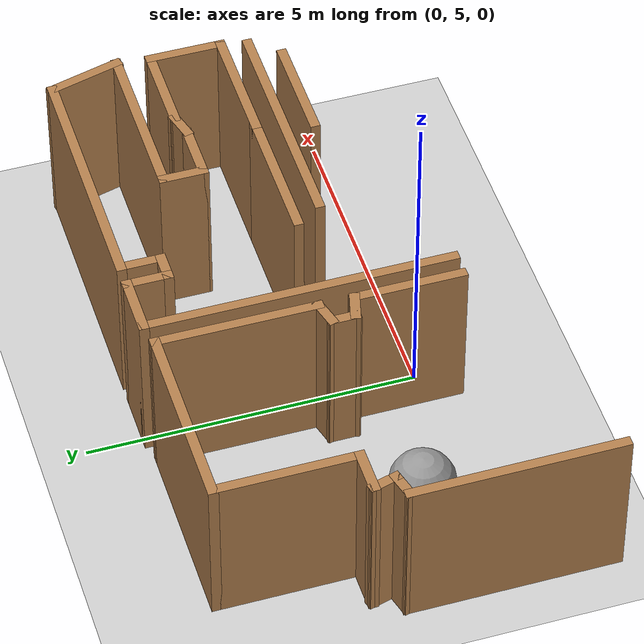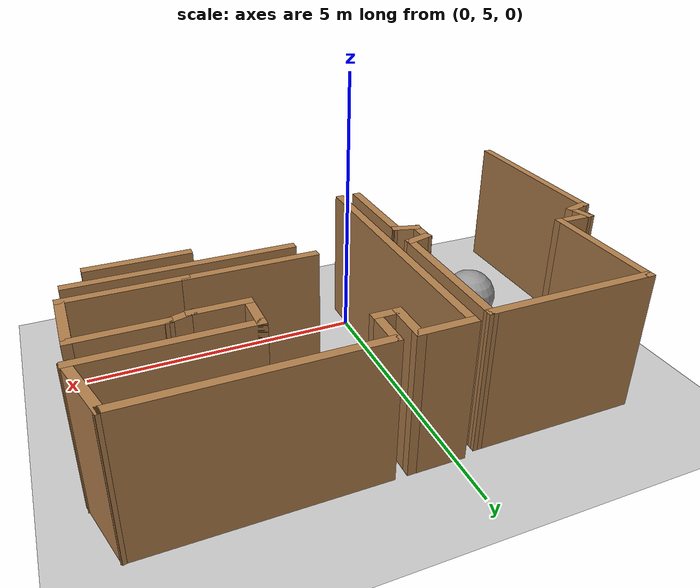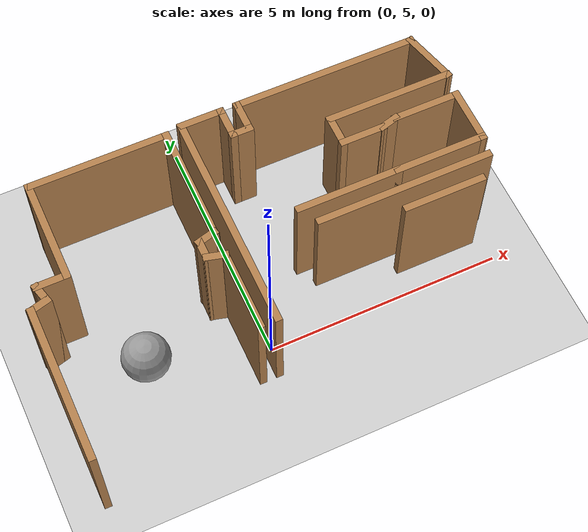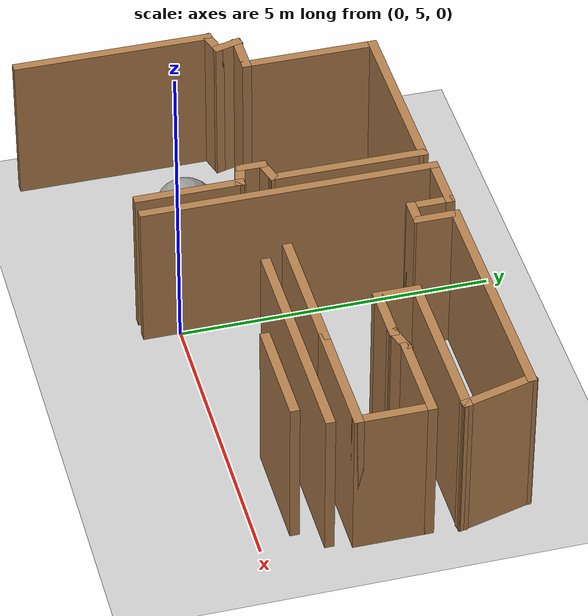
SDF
<sdf version="1.6">
 <world name="default">
  <model name="ground_plane">
   <static>1</static>
   <link name="link">
    <collision name="collision">
     <geometry><plane><normal>0 0 1</normal><size>100 100</size></plane></geometry>
     <surface><friction><ode><mu>100</mu><mu2>50</mu2></ode></friction></surface>
    </collision>
    <visual name="visual">
     <cast_shadows>0</cast_shadows>
     <geometry><plane><normal>0 0 1</normal><size>100 100</size></plane></geometry>
     <material>
      <script><uri>file://media/materials/scripts/gazebo.material</uri><name>Gazebo/Grey</name></script>
     </material>
    </visual>
   </link>
  </model>
  <model name="map_31">
   <link name="Wall_0">
    <pose>-2.44947 9.31 0 0 -0 3.14159</pose>
    <visual name="Wall_0_Visual">
     <pose>0 0 1.25 0 -0 0</pose>
     <geometry><box><size>3 0.15 2.5</size></box></geometry>
     <material>
      <script><uri>file://media/materials/scripts/gazebo.material</uri><name>Gazebo/Wood</name></script>
      <ambient>1 1 1 1</ambient>
      <shader type="pixel"/>
     </material>
     <meta><layer>0</layer></meta>
    </visual>
    <collision name="Wall_0_Collision">
     <pose>0 0 1.25 0 -0 0</pose>
     <geometry><box><size>3 0.15 2.5</size></box></geometry>
     <surface>
      <friction>
       <ode><mu>1</mu><mu2>1</mu2><fdir1>0 0 0</fdir1><slip1>0</slip1><slip2>0</slip2></ode>
       <torsional>
        <coefficient>1</coefficient>
        <patch_radius>0</patch_radius>
        <surface_radius>0</surface_radius>
        <use_patch_radius>1</use_patch_radius>
        <ode><slip>0</slip></ode>
       </torsional>
      </friction>
      <bounce><restitution_coefficient>0</restitution_coefficient><threshold>1e+06</threshold></bounce>
      <contact>
       <collide_without_contact>0</collide_without_contact>
       <collide_without_contact_bitmask>1</collide_without_contact_bitmask>
       <collide_bitmask>1</collide_bitmask>
       <ode>
        <soft_cfm>0</soft_cfm>
        <soft_erp>0.2</soft_erp>
        <kp>1e+13</kp>
        <kd>1</kd>
        <max_vel>0.01</max_vel>
        <min_depth>0</min_depth>
       </ode>
       <bullet>
        <split_impulse>1</split_impulse>
        <split_impulse_penetration_threshold>-0.01</split_impulse_penetration_threshold>
        <soft_cfm>0</soft_cfm>
        <soft_erp>0.2</soft_erp>
        <kp>1e+13</kp>
        <kd>1</kd>
       </bullet>
      </contact>
     </surface>
    </collision>
   </link>
   <link name="Wall_1">
    <pose>-3.87447 8.26 0 0 0 -1.5708</pose>
    <visual name="Wall_1_Visual">
     <pose>0 0 1.25 0 -0 0</pose>
     <geometry><box><size>2.25 0.15 2.5</size></box></geometry>
     <material>
      <script><uri>file://media/materials/scripts/gazebo.material</uri><name>Gazebo/Wood</name></script>
      <ambient>1 1 1 1</ambient>
      <shader type="pixel"/>
     </material>
     <meta><layer>0</layer></meta>
    </visual>
    <collision name="Wall_1_Collision">
     <pose>0 0 1.25 0 -0 0</pose>
     <geometry><box><size>2.25 0.15 2.5</size></box></geometry>
     <surface>
      <friction>
       <ode><mu>1</mu><mu2>1</mu2><fdir1>0 0 0</fdir1><slip1>0</slip1><slip2>0</slip2></ode>
       <torsional>
        <coefficient>1</coefficient>
        <patch_radius>0</patch_radius>
        <surface_radius>0</surface_radius>
        <use_patch_radius>1</use_patch_radius>
        <ode><slip>0</slip></ode>
       </torsional>
      </friction>
      <bounce><restitution_coefficient>0</restitution_coefficient><threshold>1e+06</threshold></bounce>
      <contact>
       <collide_without_contact>0</collide_without_contact>
       <collide_without_contact_bitmask>1</collide_without_contact_bitmask>
       <collide_bitmask>1</collide_bitmask>
       <ode>
        <soft_cfm>0</soft_cfm>
        <soft_erp>0.2</soft_erp>
        <kp>1e+13</kp>
        <kd>1</kd>
        <max_vel>0.01</max_vel>
        <min_depth>0</min_depth>
       </ode>
       <bullet>
        <split_impulse>1</split_impulse>
        <split_impulse_penetration_threshold>-0.01</split_impulse_penetration_threshold>
        <soft_cfm>0</soft_cfm>
        <soft_erp>0.2</soft_erp>
        <kp>1e+13</kp>
        <kd>1</kd>
       </bullet>
      </contact>
     </surface>
    </collision>
   </link>
   <link name="Wall_101">
    <pose>1.69359 6.71756 0 0 -0 0</pose>
    <visual name="Wall_101_Visual">
     <pose>0 0 1.25 0 -0 0</pose>
     <geometry><box><size>2.25 0.15 2.5</size></box></geometry>
     <material>
      <script><uri>file://media/materials/scripts/gazebo.material</uri><name>Gazebo/Wood</name></script>
      <ambient>1 1 1 1</ambient>
      <shader type="pixel"/>
     </material>
     <meta><layer>0</layer></meta>
    </visual>
    <collision name="Wall_101_Collision">
     <pose>0 0 1.25 0 -0 0</pose>
     <geometry><box><size>2.25 0.15 2.5</size></box></geometry>
     <surface>
      <friction>
       <ode><mu>1</mu><mu2>1</mu2><fdir1>0 0 0</fdir1><slip1>0</slip1><slip2>0</slip2></ode>
       <torsional>
        <coefficient>1</coefficient>
        <patch_radius>0</patch_radius>
        <surface_radius>0</surface_radius>
        <use_patch_radius>1</use_patch_radius>
        <ode><slip>0</slip></ode>
       </torsional>
      </friction>
      <bounce><restitution_coefficient>0</restitution_coefficient><threshold>1e+06</threshold></bounce>
      <contact>
       <collide_without_contact>0</collide_without_contact>
       <collide_without_contact_bitmask>1</collide_without_contact_bitmask>
       <collide_bitmask>1</collide_bitmask>
       <ode>
        <soft_cfm>0</soft_cfm>
        <soft_erp>0.2</soft_erp>
        <kp>1e+13</kp>
        <kd>1</kd>
        <max_vel>0.01</max_vel>
        <min_depth>0</min_depth>
       </ode>
       <bullet>
        <split_impulse>1</split_impulse>
        <split_impulse_penetration_threshold>-0.01</split_impulse_penetration_threshold>
        <soft_cfm>0</soft_cfm>
        <soft_erp>0.2</soft_erp>
        <kp>1e+13</kp>
        <kd>1</kd>
       </bullet>
      </contact>
     </surface>
    </collision>
   </link>
   <link name="Wall_102">
    <pose>3.66859 6.71756 0 0 -0 0</pose>
    <visual name="Wall_102_Visual">
     <pose>0 0 1.25 0 -0 0</pose>
     <geometry><box><size>2 0.15 2.5</size></box></geometry>
     <material>
      <script><uri>file://media/materials/scripts/gazebo.material</uri><name>Gazebo/Wood</name></script>
      <ambient>1 1 1 1</ambient>
      <shader type="pixel"/>
     </material>
     <meta><layer>0</layer></meta>
    </visual>
    <collision name="Wall_102_Collision">
     <pose>0 0 1.25 0 -0 0</pose>
     <geometry><box><size>2 0.15 2.5</size></box></geometry>
     <surface>
      <friction>
       <ode><mu>1</mu><mu2>1</mu2><fdir1>0 0 0</fdir1><slip1>0</slip1><slip2>0</slip2></ode>
       <torsional>
        <coefficient>1</coefficient>
        <patch_radius>0</patch_radius>
        <surface_radius>0</surface_radius>
        <use_patch_radius>1</use_patch_radius>
        <ode><slip>0</slip></ode>
       </torsional>
      </friction>
      <bounce><restitution_coefficient>0</restitution_coefficient><threshold>1e+06</threshold></bounce>
      <contact>
       <collide_without_contact>0</collide_without_contact>
       <collide_without_contact_bitmask>1</collide_without_contact_bitmask>
       <collide_bitmask>1</collide_bitmask>
       <ode>
        <soft_cfm>0</soft_cfm>
        <soft_erp>0.2</soft_erp>
        <kp>1e+13</kp>
        <kd>1</kd>
        <max_vel>0.01</max_vel>
        <min_depth>0</min_depth>
       </ode>
       <bullet>
        <split_impulse>1</split_impulse>
        <split_impulse_penetration_threshold>-0.01</split_impulse_penetration_threshold>
        <soft_cfm>0</soft_cfm>
        <soft_erp>0.2</soft_erp>
        <kp>1e+13</kp>
        <kd>1</kd>
       </bullet>
      </contact>
     </surface>
    </collision>
   </link>
   <link name="Wall_103">
    <pose>4.59359 7.26756 0 0 -0 1.5708</pose>
    <visual name="Wall_103_Visual">
     <pose>0 0 1.25 0 -0 0</pose>
     <geometry><box><size>1.25 0.15 2.5</size></box></geometry>
     <material>
      <script><uri>file://media/materials/scripts/gazebo.material</uri><name>Gazebo/Wood</name></script>
      <ambient>1 1 1 1</ambient>
      <shader type="pixel"/>
     </material>
     <meta><layer>0</layer></meta>
    </visual>
    <collision name="Wall_103_Collision">
     <pose>0 0 1.25 0 -0 0</pose>
     <geometry><box><size>1.25 0.15 2.5</size></box></geometry>
     <surface>
      <friction>
       <ode><mu>1</mu><mu2>1</mu2><fdir1>0 0 0</fdir1><slip1>0</slip1><slip2>0</slip2></ode>
       <torsional>
        <coefficient>1</coefficient>
        <patch_radius>0</patch_radius>
        <surface_radius>0</surface_radius>
        <use_patch_radius>1</use_patch_radius>
        <ode><slip>0</slip></ode>
       </torsional>
      </friction>
      <bounce><restitution_coefficient>0</restitution_coefficient><threshold>1e+06</threshold></bounce>
      <contact>
       <collide_without_contact>0</collide_without_contact>
       <collide_without_contact_bitmask>1</collide_without_contact_bitmask>
       <collide_bitmask>1</collide_bitmask>
       <ode>
        <soft_cfm>0</soft_cfm>
        <soft_erp>0.2</soft_erp>
        <kp>1e+13</kp>
        <kd>1</kd>
        <max_vel>0.01</max_vel>
        <min_depth>0</min_depth>
       </ode>
       <bullet>
        <split_impulse>1</split_impulse>
        <split_impulse_penetration_threshold>-0.01</split_impulse_penetration_threshold>
        <soft_cfm>0</soft_cfm>
        <soft_erp>0.2</soft_erp>
        <kp>1e+13</kp>
        <kd>1</kd>
       </bullet>
      </contact>
     </surface>
    </collision>
   </link>
   <link name="Wall_104">
    <pose>3.91859 7.81756 0 0 -0 3.14159</pose>
    <visual name="Wall_104_Visual">
     <pose>0 0 1.25 0 -0 0</pose>
     <geometry><box><size>1.5 0.15 2.5</size></box></geometry>
     <material>
      <script><uri>file://media/materials/scripts/gazebo.material</uri><name>Gazebo/Wood</name></script>
      <ambient>1 1 1 1</ambient>
      <shader type="pixel"/>
     </material>
     <meta><layer>0</layer></meta>
    </visual>
    <collision name="Wall_104_Collision">
     <pose>0 0 1.25 0 -0 0</pose>
     <geometry><box><size>1.5 0.15 2.5</size></box></geometry>
     <surface>
      <friction>
       <ode><mu>1</mu><mu2>1</mu2><fdir1>0 0 0</fdir1><slip1>0</slip1><slip2>0</slip2></ode>
       <torsional>
        <coefficient>1</coefficient>
        <patch_radius>0</patch_radius>
        <surface_radius>0</surface_radius>
        <use_patch_radius>1</use_patch_radius>
        <ode><slip>0</slip></ode>
       </torsional>
      </friction>
      <bounce><restitution_coefficient>0</restitution_coefficient><threshold>1e+06</threshold></bounce>
      <contact>
       <collide_without_contact>0</collide_without_contact>
       <collide_without_contact_bitmask>1</collide_without_contact_bitmask>
       <collide_bitmask>1</collide_bitmask>
       <ode>
        <soft_cfm>0</soft_cfm>
        <soft_erp>0.2</soft_erp>
        <kp>1e+13</kp>
        <kd>1</kd>
        <max_vel>0.01</max_vel>
        <min_depth>0</min_depth>
       </ode>
       <bullet>
        <split_impulse>1</split_impulse>
        <split_impulse_penetration_threshold>-0.01</split_impulse_penetration_threshold>
        <soft_cfm>0</soft_cfm>
        <soft_erp>0.2</soft_erp>
        <kp>1e+13</kp>
        <kd>1</kd>
       </bullet>
      </contact>
     </surface>
    </collision>
   </link>
   <link name="Wall_105">
    <pose>3.07455 7.77226 0 0 0 -2.87979</pose>
    <visual name="Wall_105_Visual">
     <pose>0 0 1.25 0 -0 0</pose>
     <geometry><box><size>0.5 0.15 2.5</size></box></geometry>
     <material>
      <script><uri>file://media/materials/scripts/gazebo.material</uri><name>Gazebo/Wood</name></script>
      <ambient>1 1 1 1</ambient>
      <shader type="pixel"/>
     </material>
     <meta><layer>0</layer></meta>
    </visual>
    <collision name="Wall_105_Collision">
     <pose>0 0 1.25 0 -0 0</pose>
     <geometry><box><size>0.5 0.15 2.5</size></box></geometry>
     <surface>
      <friction>
       <ode><mu>1</mu><mu2>1</mu2><fdir1>0 0 0</fdir1><slip1>0</slip1><slip2>0</slip2></ode>
       <torsional>
        <coefficient>1</coefficient>
        <patch_radius>0</patch_radius>
        <surface_radius>0</surface_radius>
        <use_patch_radius>1</use_patch_radius>
        <ode><slip>0</slip></ode>
       </torsional>
      </friction>
      <bounce><restitution_coefficient>0</restitution_coefficient><threshold>1e+06</threshold></bounce>
      <contact>
       <collide_without_contact>0</collide_without_contact>
       <collide_without_contact_bitmask>1</collide_without_contact_bitmask>
       <collide_bitmask>1</collide_bitmask>
       <ode>
        <soft_cfm>0</soft_cfm>
        <soft_erp>0.2</soft_erp>
        <kp>1e+13</kp>
        <kd>1</kd>
        <max_vel>0.01</max_vel>
        <min_depth>0</min_depth>
       </ode>
       <bullet>
        <split_impulse>1</split_impulse>
        <split_impulse_penetration_threshold>-0.01</split_impulse_penetration_threshold>
        <soft_cfm>0</soft_cfm>
        <soft_erp>0.2</soft_erp>
        <kp>1e+13</kp>
        <kd>1</kd>
       </bullet>
      </contact>
     </surface>
    </collision>
   </link>
   <link name="Wall_106">
    <pose>2.48051 7.72697 0 0 -0 3.14159</pose>
    <visual name="Wall_106_Visual">
     <pose>0 0 1.25 0 -0 0</pose>
     <geometry><box><size>1 0.15 2.5</size></box></geometry>
     <material>
      <script><uri>file://media/materials/scripts/gazebo.material</uri><name>Gazebo/Wood</name></script>
      <ambient>1 1 1 1</ambient>
      <shader type="pixel"/>
     </material>
     <meta><layer>0</layer></meta>
    </visual>
    <collision name="Wall_106_Collision">
     <pose>0 0 1.25 0 -0 0</pose>
     <geometry><box><size>1 0.15 2.5</size></box></geometry>
     <surface>
      <friction>
       <ode><mu>1</mu><mu2>1</mu2><fdir1>0 0 0</fdir1><slip1>0</slip1><slip2>0</slip2></ode>
       <torsional>
        <coefficient>1</coefficient>
        <patch_radius>0</patch_radius>
        <surface_radius>0</surface_radius>
        <use_patch_radius>1</use_patch_radius>
        <ode><slip>0</slip></ode>
       </torsional>
      </friction>
      <bounce><restitution_coefficient>0</restitution_coefficient><threshold>1e+06</threshold></bounce>
      <contact>
       <collide_without_contact>0</collide_without_contact>
       <collide_without_contact_bitmask>1</collide_without_contact_bitmask>
       <collide_bitmask>1</collide_bitmask>
       <ode>
        <soft_cfm>0</soft_cfm>
        <soft_erp>0.2</soft_erp>
        <kp>1e+13</kp>
        <kd>1</kd>
        <max_vel>0.01</max_vel>
        <min_depth>0</min_depth>
       </ode>
       <bullet>
        <split_impulse>1</split_impulse>
        <split_impulse_penetration_threshold>-0.01</split_impulse_penetration_threshold>
        <soft_cfm>0</soft_cfm>
        <soft_erp>0.2</soft_erp>
        <kp>1e+13</kp>
        <kd>1</kd>
       </bullet>
      </contact>
     </surface>
    </collision>
   </link>
   <link name="Wall_107">
    <pose>2.05551 8.02697 0 0 -0 1.5708</pose>
    <visual name="Wall_107_Visual">
     <pose>0 0 1.25 0 -0 0</pose>
     <geometry><box><size>0.75 0.15 2.5</size></box></geometry>
     <material>
      <script><uri>file://media/materials/scripts/gazebo.material</uri><name>Gazebo/Wood</name></script>
      <ambient>1 1 1 1</ambient>
      <shader type="pixel"/>
     </material>
     <meta><layer>0</layer></meta>
    </visual>
    <collision name="Wall_107_Collision">
     <pose>0 0 1.25 0 -0 0</pose>
     <geometry><box><size>0.75 0.15 2.5</size></box></geometry>
     <surface>
      <friction>
       <ode><mu>1</mu><mu2>1</mu2><fdir1>0 0 0</fdir1><slip1>0</slip1><slip2>0</slip2></ode>
       <torsional>
        <coefficient>1</coefficient>
        <patch_radius>0</patch_radius>
        <surface_radius>0</surface_radius>
        <use_patch_radius>1</use_patch_radius>
        <ode><slip>0</slip></ode>
       </torsional>
      </friction>
      <bounce><restitution_coefficient>0</restitution_coefficient><threshold>1e+06</threshold></bounce>
      <contact>
       <collide_without_contact>0</collide_without_contact>
       <collide_without_contact_bitmask>1</collide_without_contact_bitmask>
       <collide_bitmask>1</collide_bitmask>
       <ode>
        <soft_cfm>0</soft_cfm>
        <soft_erp>0.2</soft_erp>
        <kp>1e+13</kp>
        <kd>1</kd>
        <max_vel>0.01</max_vel>
        <min_depth>0</min_depth>
       </ode>
       <bullet>
        <split_impulse>1</split_impulse>
        <split_impulse_penetration_threshold>-0.01</split_impulse_penetration_threshold>
        <soft_cfm>0</soft_cfm>
        <soft_erp>0.2</soft_erp>
        <kp>1e+13</kp>
        <kd>1</kd>
       </bullet>
      </contact>
     </surface>
    </collision>
   </link>
   <link name="Wall_108">
    <pose>3.35551 8.32697 0 0 -0 0</pose>
    <visual name="Wall_108_Visual">
     <pose>0 0 1.25 0 -0 0</pose>
     <geometry><box><size>2.75 0.15 2.5</size></box></geometry>
     <material>
      <script><uri>file://media/materials/scripts/gazebo.material</uri><name>Gazebo/Wood</name></script>
      <ambient>1 1 1 1</ambient>
      <shader type="pixel"/>
     </material>
     <meta><layer>0</layer></meta>
    </visual>
    <collision name="Wall_108_Collision">
     <pose>0 0 1.25 0 -0 0</pose>
     <geometry><box><size>2.75 0.15 2.5</size></box></geometry>
     <surface>
      <friction>
       <ode><mu>1</mu><mu2>1</mu2><fdir1>0 0 0</fdir1><slip1>0</slip1><slip2>0</slip2></ode>
       <torsional>
        <coefficient>1</coefficient>
        <patch_radius>0</patch_radius>
        <surface_radius>0</surface_radius>
        <use_patch_radius>1</use_patch_radius>
        <ode><slip>0</slip></ode>
       </torsional>
      </friction>
      <bounce><restitution_coefficient>0</restitution_coefficient><threshold>1e+06</threshold></bounce>
      <contact>
       <collide_without_contact>0</collide_without_contact>
       <collide_without_contact_bitmask>1</collide_without_contact_bitmask>
       <collide_bitmask>1</collide_bitmask>
       <ode>
        <soft_cfm>0</soft_cfm>
        <soft_erp>0.2</soft_erp>
        <kp>1e+13</kp>
        <kd>1</kd>
        <max_vel>0.01</max_vel>
        <min_depth>0</min_depth>
       </ode>
       <bullet>
        <split_impulse>1</split_impulse>
        <split_impulse_penetration_threshold>-0.01</split_impulse_penetration_threshold>
        <soft_cfm>0</soft_cfm>
        <soft_erp>0.2</soft_erp>
        <kp>1e+13</kp>
        <kd>1</kd>
       </bullet>
      </contact>
     </surface>
    </collision>
   </link>
   <link name="Wall_109">
    <pose>4.51316 8.85823 0 0 -0 1.8326</pose>
    <visual name="Wall_109_Visual">
     <pose>0 0 1.25 0 -0 0</pose>
     <geometry><box><size>1.25 0.15 2.5</size></box></geometry>
     <material>
      <script><uri>file://media/materials/scripts/gazebo.material</uri><name>Gazebo/Wood</name></script>
      <ambient>1 1 1 1</ambient>
      <shader type="pixel"/>
     </material>
     <meta><layer>0</layer></meta>
    </visual>
    <collision name="Wall_109_Collision">
     <pose>0 0 1.25 0 -0 0</pose>
     <geometry><box><size>1.25 0.15 2.5</size></box></geometry>
     <surface>
      <friction>
       <ode><mu>1</mu><mu2>1</mu2><fdir1>0 0 0</fdir1><slip1>0</slip1><slip2>0</slip2></ode>
       <torsional>
        <coefficient>1</coefficient>
        <patch_radius>0</patch_radius>
        <surface_radius>0</surface_radius>
        <use_patch_radius>1</use_patch_radius>
        <ode><slip>0</slip></ode>
       </torsional>
      </friction>
      <bounce><restitution_coefficient>0</restitution_coefficient><threshold>1e+06</threshold></bounce>
      <contact>
       <collide_without_contact>0</collide_without_contact>
       <collide_without_contact_bitmask>1</collide_without_contact_bitmask>
       <collide_bitmask>1</collide_bitmask>
       <ode>
        <soft_cfm>0</soft_cfm>
        <soft_erp>0.2</soft_erp>
        <kp>1e+13</kp>
        <kd>1</kd>
        <max_vel>0.01</max_vel>
        <min_depth>0</min_depth>
       </ode>
       <bullet>
        <split_impulse>1</split_impulse>
        <split_impulse_penetration_threshold>-0.01</split_impulse_penetration_threshold>
        <soft_cfm>0</soft_cfm>
        <soft_erp>0.2</soft_erp>
        <kp>1e+13</kp>
        <kd>1</kd>
       </bullet>
      </contact>
     </surface>
    </collision>
   </link>
   <link name="Wall_110">
    <pose>2.44581 9.38949 0 0 -0 3.14159</pose>
    <visual name="Wall_110_Visual">
     <pose>0 0 1.25 0 -0 0</pose>
     <geometry><box><size>4 0.15 2.5</size></box></geometry>
     <material>
      <script><uri>file://media/materials/scripts/gazebo.material</uri><name>Gazebo/Wood</name></script>
      <ambient>1 1 1 1</ambient>
      <shader type="pixel"/>
     </material>
     <meta><layer>0</layer></meta>
    </visual>
    <collision name="Wall_110_Collision">
     <pose>0 0 1.25 0 -0 0</pose>
     <geometry><box><size>4 0.15 2.5</size></box></geometry>
     <surface>
      <friction>
       <ode><mu>1</mu><mu2>1</mu2><fdir1>0 0 0</fdir1><slip1>0</slip1><slip2>0</slip2></ode>
       <torsional>
        <coefficient>1</coefficient>
        <patch_radius>0</patch_radius>
        <surface_radius>0</surface_radius>
        <use_patch_radius>1</use_patch_radius>
        <ode><slip>0</slip></ode>
       </torsional>
      </friction>
      <bounce><restitution_coefficient>0</restitution_coefficient><threshold>1e+06</threshold></bounce>
      <contact>
       <collide_without_contact>0</collide_without_contact>
       <collide_without_contact_bitmask>1</collide_without_contact_bitmask>
       <collide_bitmask>1</collide_bitmask>
       <ode>
        <soft_cfm>0</soft_cfm>
        <soft_erp>0.2</soft_erp>
        <kp>1e+13</kp>
        <kd>1</kd>
        <max_vel>0.01</max_vel>
        <min_depth>0</min_depth>
       </ode>
       <bullet>
        <split_impulse>1</split_impulse>
        <split_impulse_penetration_threshold>-0.01</split_impulse_penetration_threshold>
        <soft_cfm>0</soft_cfm>
        <soft_erp>0.2</soft_erp>
        <kp>1e+13</kp>
        <kd>1</kd>
       </bullet>
      </contact>
     </surface>
    </collision>
   </link>
   <link name="Wall_111">
    <pose>0.520811 9.08949 0 0 0 -1.5708</pose>
    <visual name="Wall_111_Visual">
     <pose>0 0 1.25 0 -0 0</pose>
     <geometry><box><size>0.75 0.15 2.5</size></box></geometry>
     <material>
      <script><uri>file://media/materials/scripts/gazebo.material</uri><name>Gazebo/Wood</name></script>
      <ambient>1 1 1 1</ambient>
      <shader type="pixel"/>
     </material>
     <meta><layer>0</layer></meta>
    </visual>
    <collision name="Wall_111_Collision">
     <pose>0 0 1.25 0 -0 0</pose>
     <geometry><box><size>0.75 0.15 2.5</size></box></geometry>
     <surface>
      <friction>
       <ode><mu>1</mu><mu2>1</mu2><fdir1>0 0 0</fdir1><slip1>0</slip1><slip2>0</slip2></ode>
       <torsional>
        <coefficient>1</coefficient>
        <patch_radius>0</patch_radius>
        <surface_radius>0</surface_radius>
        <use_patch_radius>1</use_patch_radius>
        <ode><slip>0</slip></ode>
       </torsional>
      </friction>
      <bounce><restitution_coefficient>0</restitution_coefficient><threshold>1e+06</threshold></bounce>
      <contact>
       <collide_without_contact>0</collide_without_contact>
       <collide_without_contact_bitmask>1</collide_without_contact_bitmask>
       <collide_bitmask>1</collide_bitmask>
       <ode>
        <soft_cfm>0</soft_cfm>
        <soft_erp>0.2</soft_erp>
        <kp>1e+13</kp>
        <kd>1</kd>
        <max_vel>0.01</max_vel>
        <min_depth>0</min_depth>
       </ode>
       <bullet>
        <split_impulse>1</split_impulse>
        <split_impulse_penetration_threshold>-0.01</split_impulse_penetration_threshold>
        <soft_cfm>0</soft_cfm>
        <soft_erp>0.2</soft_erp>
        <kp>1e+13</kp>
        <kd>1</kd>
       </bullet>
      </contact>
     </surface>
    </collision>
   </link>
   <link name="Wall_112">
    <pose>0.345811 8.78949 0 0 -0 3.14159</pose>
    <visual name="Wall_112_Visual">
     <pose>0 0 1.25 0 -0 0</pose>
     <geometry><box><size>0.5 0.15 2.5</size></box></geometry>
     <material>
      <script><uri>file://media/materials/scripts/gazebo.material</uri><name>Gazebo/Wood</name></script>
      <ambient>1 1 1 1</ambient>
      <shader type="pixel"/>
     </material>
     <meta><layer>0</layer></meta>
    </visual>
    <collision name="Wall_112_Collision">
     <pose>0 0 1.25 0 -0 0</pose>
     <geometry><box><size>0.5 0.15 2.5</size></box></geometry>
     <surface>
      <friction>
       <ode><mu>1</mu><mu2>1</mu2><fdir1>0 0 0</fdir1><slip1>0</slip1><slip2>0</slip2></ode>
       <torsional>
        <coefficient>1</coefficient>
        <patch_radius>0</patch_radius>
        <surface_radius>0</surface_radius>
        <use_patch_radius>1</use_patch_radius>
        <ode><slip>0</slip></ode>
       </torsional>
      </friction>
      <bounce><restitution_coefficient>0</restitution_coefficient><threshold>1e+06</threshold></bounce>
      <contact>
       <collide_without_contact>0</collide_without_contact>
       <collide_without_contact_bitmask>1</collide_without_contact_bitmask>
       <collide_bitmask>1</collide_bitmask>
       <ode>
        <soft_cfm>0</soft_cfm>
        <soft_erp>0.2</soft_erp>
        <kp>1e+13</kp>
        <kd>1</kd>
        <max_vel>0.01</max_vel>
        <min_depth>0</min_depth>
       </ode>
       <bullet>
        <split_impulse>1</split_impulse>
        <split_impulse_penetration_threshold>-0.01</split_impulse_penetration_threshold>
        <soft_cfm>0</soft_cfm>
        <soft_erp>0.2</soft_erp>
        <kp>1e+13</kp>
        <kd>1</kd>
       </bullet>
      </contact>
     </surface>
    </collision>
   </link>
   <link name="Wall_113">
    <pose>0.170811 9.08949 0 0 -0 1.5708</pose>
    <visual name="Wall_113_Visual">
     <pose>0 0 1.25 0 -0 0</pose>
     <geometry><box><size>0.75 0.15 2.5</size></box></geometry>
     <material>
      <script><uri>file://media/materials/scripts/gazebo.material</uri><name>Gazebo/Wood</name></script>
      <ambient>1 1 1 1</ambient>
      <shader type="pixel"/>
     </material>
     <meta><layer>0</layer></meta>
    </visual>
    <collision name="Wall_113_Collision">
     <pose>0 0 1.25 0 -0 0</pose>
     <geometry><box><size>0.75 0.15 2.5</size></box></geometry>
     <surface>
      <friction>
       <ode><mu>1</mu><mu2>1</mu2><fdir1>0 0 0</fdir1><slip1>0</slip1><slip2>0</slip2></ode>
       <torsional>
        <coefficient>1</coefficient>
        <patch_radius>0</patch_radius>
        <surface_radius>0</surface_radius>
        <use_patch_radius>1</use_patch_radius>
        <ode><slip>0</slip></ode>
       </torsional>
      </friction>
      <bounce><restitution_coefficient>0</restitution_coefficient><threshold>1e+06</threshold></bounce>
      <contact>
       <collide_without_contact>0</collide_without_contact>
       <collide_without_contact_bitmask>1</collide_without_contact_bitmask>
       <collide_bitmask>1</collide_bitmask>
       <ode>
        <soft_cfm>0</soft_cfm>
        <soft_erp>0.2</soft_erp>
        <kp>1e+13</kp>
        <kd>1</kd>
        <max_vel>0.01</max_vel>
        <min_depth>0</min_depth>
       </ode>
       <bullet>
        <split_impulse>1</split_impulse>
        <split_impulse_penetration_threshold>-0.01</split_impulse_penetration_threshold>
        <soft_cfm>0</soft_cfm>
        <soft_erp>0.2</soft_erp>
        <kp>1e+13</kp>
        <kd>1</kd>
       </bullet>
      </contact>
     </surface>
    </collision>
   </link>
   <link name="Wall_116">
    <pose>-0.254189 9.38949 0 0 -0 3.14159</pose>
    <visual name="Wall_116_Visual">
     <pose>0 0 1.25 0 -0 0</pose>
     <geometry><box><size>1 0.15 2.5</size></box></geometry>
     <material>
      <script><uri>file://media/materials/scripts/gazebo.material</uri><name>Gazebo/Wood</name></script>
      <ambient>1 1 1 1</ambient>
      <shader type="pixel"/>
     </material>
     <meta><layer>0</layer></meta>
    </visual>
    <collision name="Wall_116_Collision">
     <pose>0 0 1.25 0 -0 0</pose>
     <geometry><box><size>1 0.15 2.5</size></box></geometry>
     <surface>
      <friction>
       <ode><mu>1</mu><mu2>1</mu2><fdir1>0 0 0</fdir1><slip1>0</slip1><slip2>0</slip2></ode>
       <torsional>
        <coefficient>1</coefficient>
        <patch_radius>0</patch_radius>
        <surface_radius>0</surface_radius>
        <use_patch_radius>1</use_patch_radius>
        <ode><slip>0</slip></ode>
       </torsional>
      </friction>
      <bounce><restitution_coefficient>0</restitution_coefficient><threshold>1e+06</threshold></bounce>
      <contact>
       <collide_without_contact>0</collide_without_contact>
       <collide_without_contact_bitmask>1</collide_without_contact_bitmask>
       <collide_bitmask>1</collide_bitmask>
       <ode>
        <soft_cfm>0</soft_cfm>
        <soft_erp>0.2</soft_erp>
        <kp>1e+13</kp>
        <kd>1</kd>
        <max_vel>0.01</max_vel>
        <min_depth>0</min_depth>
       </ode>
       <bullet>
        <split_impulse>1</split_impulse>
        <split_impulse_penetration_threshold>-0.01</split_impulse_penetration_threshold>
        <soft_cfm>0</soft_cfm>
        <soft_erp>0.2</soft_erp>
        <kp>1e+13</kp>
        <kd>1</kd>
       </bullet>
      </contact>
     </surface>
    </collision>
   </link>
   <link name="Wall_117">
    <pose>-0.679188 7.08949 0 0 0 -1.5708</pose>
    <visual name="Wall_117_Visual">
     <pose>0 0 1.25 0 -0 0</pose>
     <geometry><box><size>4.75 0.15 2.5</size></box></geometry>
     <material>
      <script><uri>file://media/materials/scripts/gazebo.material</uri><name>Gazebo/Wood</name></script>
      <ambient>1 1 1 1</ambient>
      <shader type="pixel"/>
     </material>
     <meta><layer>0</layer></meta>
    </visual>
    <collision name="Wall_117_Collision">
     <pose>0 0 1.25 0 -0 0</pose>
     <geometry><box><size>4.75 0.15 2.5</size></box></geometry>
     <surface>
      <friction>
       <ode><mu>1</mu><mu2>1</mu2><fdir1>0 0 0</fdir1><slip1>0</slip1><slip2>0</slip2></ode>
       <torsional>
        <coefficient>1</coefficient>
        <patch_radius>0</patch_radius>
        <surface_radius>0</surface_radius>
        <use_patch_radius>1</use_patch_radius>
        <ode><slip>0</slip></ode>
       </torsional>
      </friction>
      <bounce><restitution_coefficient>0</restitution_coefficient><threshold>1e+06</threshold></bounce>
      <contact>
       <collide_without_contact>0</collide_without_contact>
       <collide_without_contact_bitmask>1</collide_without_contact_bitmask>
       <collide_bitmask>1</collide_bitmask>
       <ode>
        <soft_cfm>0</soft_cfm>
        <soft_erp>0.2</soft_erp>
        <kp>1e+13</kp>
        <kd>1</kd>
        <max_vel>0.01</max_vel>
        <min_depth>0</min_depth>
       </ode>
       <bullet>
        <split_impulse>1</split_impulse>
        <split_impulse_penetration_threshold>-0.01</split_impulse_penetration_threshold>
        <soft_cfm>0</soft_cfm>
        <soft_erp>0.2</soft_erp>
        <kp>1e+13</kp>
        <kd>1</kd>
       </bullet>
      </contact>
     </surface>
    </collision>
   </link>
   <link name="Wall_124">
    <pose>-1.02919 5.58949 0 0 -0 1.5708</pose>
    <visual name="Wall_124_Visual">
     <pose>0 0 1.25 0 -0 0</pose>
     <geometry><box><size>1.75 0.15 2.5</size></box></geometry>
     <material>
      <script><uri>file://media/materials/scripts/gazebo.material</uri><name>Gazebo/Wood</name></script>
      <ambient>1 1 1 1</ambient>
      <shader type="pixel"/>
     </material>
     <meta><layer>0</layer></meta>
    </visual>
    <collision name="Wall_124_Collision">
     <pose>0 0 1.25 0 -0 0</pose>
     <geometry><box><size>1.75 0.15 2.5</size></box></geometry>
     <surface>
      <friction>
       <ode><mu>1</mu><mu2>1</mu2><fdir1>0 0 0</fdir1><slip1>0</slip1><slip2>0</slip2></ode>
       <torsional>
        <coefficient>1</coefficient>
        <patch_radius>0</patch_radius>
        <surface_radius>0</surface_radius>
        <use_patch_radius>1</use_patch_radius>
        <ode><slip>0</slip></ode>
       </torsional>
      </friction>
      <bounce><restitution_coefficient>0</restitution_coefficient><threshold>1e+06</threshold></bounce>
      <contact>
       <collide_without_contact>0</collide_without_contact>
       <collide_without_contact_bitmask>1</collide_without_contact_bitmask>
       <collide_bitmask>1</collide_bitmask>
       <ode>
        <soft_cfm>0</soft_cfm>
        <soft_erp>0.2</soft_erp>
        <kp>1e+13</kp>
        <kd>1</kd>
        <max_vel>0.01</max_vel>
        <min_depth>0</min_depth>
       </ode>
       <bullet>
        <split_impulse>1</split_impulse>
        <split_impulse_penetration_threshold>-0.01</split_impulse_penetration_threshold>
        <soft_cfm>0</soft_cfm>
        <soft_erp>0.2</soft_erp>
        <kp>1e+13</kp>
        <kd>1</kd>
       </bullet>
      </contact>
     </surface>
    </collision>
   </link>
   <link name="Wall_125">
    <pose>-1.19823 6.43478 0 0 -0 2.87979</pose>
    <visual name="Wall_125_Visual">
     <pose>0 0 1.25 0 -0 0</pose>
     <geometry><box><size>0.5 0.15 2.5</size></box></geometry>
     <material>
      <script><uri>file://media/materials/scripts/gazebo.material</uri><name>Gazebo/Wood</name></script>
      <ambient>1 1 1 1</ambient>
      <shader type="pixel"/>
     </material>
     <meta><layer>0</layer></meta>
    </visual>
    <collision name="Wall_125_Collision">
     <pose>0 0 1.25 0 -0 0</pose>
     <geometry><box><size>0.5 0.15 2.5</size></box></geometry>
     <surface>
      <friction>
       <ode><mu>1</mu><mu2>1</mu2><fdir1>0 0 0</fdir1><slip1>0</slip1><slip2>0</slip2></ode>
       <torsional>
        <coefficient>1</coefficient>
        <patch_radius>0</patch_radius>
        <surface_radius>0</surface_radius>
        <use_patch_radius>1</use_patch_radius>
        <ode><slip>0</slip></ode>
       </torsional>
      </friction>
      <bounce><restitution_coefficient>0</restitution_coefficient><threshold>1e+06</threshold></bounce>
      <contact>
       <collide_without_contact>0</collide_without_contact>
       <collide_without_contact_bitmask>1</collide_without_contact_bitmask>
       <collide_bitmask>1</collide_bitmask>
       <ode>
        <soft_cfm>0</soft_cfm>
        <soft_erp>0.2</soft_erp>
        <kp>1e+13</kp>
        <kd>1</kd>
        <max_vel>0.01</max_vel>
        <min_depth>0</min_depth>
       </ode>
       <bullet>
        <split_impulse>1</split_impulse>
        <split_impulse_penetration_threshold>-0.01</split_impulse_penetration_threshold>
        <soft_cfm>0</soft_cfm>
        <soft_erp>0.2</soft_erp>
        <kp>1e+13</kp>
        <kd>1</kd>
       </bullet>
      </contact>
     </surface>
    </collision>
   </link>
   <link name="Wall_126">
    <pose>-1.36726 6.65508 0 0 -0 1.5708</pose>
    <visual name="Wall_126_Visual">
     <pose>0 0 1.25 0 -0 0</pose>
     <geometry><box><size>0.5 0.15 2.5</size></box></geometry>
     <material>
      <script><uri>file://media/materials/scripts/gazebo.material</uri><name>Gazebo/Wood</name></script>
      <ambient>1 1 1 1</ambient>
      <shader type="pixel"/>
     </material>
     <meta><layer>0</layer></meta>
    </visual>
    <collision name="Wall_126_Collision">
     <pose>0 0 1.25 0 -0 0</pose>
     <geometry><box><size>0.5 0.15 2.5</size></box></geometry>
     <surface>
      <friction>
       <ode><mu>1</mu><mu2>1</mu2><fdir1>0 0 0</fdir1><slip1>0</slip1><slip2>0</slip2></ode>
       <torsional>
        <coefficient>1</coefficient>
        <patch_radius>0</patch_radius>
        <surface_radius>0</surface_radius>
        <use_patch_radius>1</use_patch_radius>
        <ode><slip>0</slip></ode>
       </torsional>
      </friction>
      <bounce><restitution_coefficient>0</restitution_coefficient><threshold>1e+06</threshold></bounce>
      <contact>
       <collide_without_contact>0</collide_without_contact>
       <collide_without_contact_bitmask>1</collide_without_contact_bitmask>
       <collide_bitmask>1</collide_bitmask>
       <ode>
        <soft_cfm>0</soft_cfm>
        <soft_erp>0.2</soft_erp>
        <kp>1e+13</kp>
        <kd>1</kd>
        <max_vel>0.01</max_vel>
        <min_depth>0</min_depth>
       </ode>
       <bullet>
        <split_impulse>1</split_impulse>
        <split_impulse_penetration_threshold>-0.01</split_impulse_penetration_threshold>
        <soft_cfm>0</soft_cfm>
        <soft_erp>0.2</soft_erp>
        <kp>1e+13</kp>
        <kd>1</kd>
       </bullet>
      </contact>
     </surface>
    </collision>
   </link>
   <link name="Wall_127">
    <pose>-1.19823 6.87537 0 0 -0 0.261799</pose>
    <visual name="Wall_127_Visual">
     <pose>0 0 1.25 0 -0 0</pose>
     <geometry><box><size>0.5 0.15 2.5</size></box></geometry>
     <material>
      <script><uri>file://media/materials/scripts/gazebo.material</uri><name>Gazebo/Wood</name></script>
      <ambient>1 1 1 1</ambient>
      <shader type="pixel"/>
     </material>
     <meta><layer>0</layer></meta>
    </visual>
    <collision name="Wall_127_Collision">
     <pose>0 0 1.25 0 -0 0</pose>
     <geometry><box><size>0.5 0.15 2.5</size></box></geometry>
     <surface>
      <friction>
       <ode><mu>1</mu><mu2>1</mu2><fdir1>0 0 0</fdir1><slip1>0</slip1><slip2>0</slip2></ode>
       <torsional>
        <coefficient>1</coefficient>
        <patch_radius>0</patch_radius>
        <surface_radius>0</surface_radius>
        <use_patch_radius>1</use_patch_radius>
        <ode><slip>0</slip></ode>
       </torsional>
      </friction>
      <bounce><restitution_coefficient>0</restitution_coefficient><threshold>1e+06</threshold></bounce>
      <contact>
       <collide_without_contact>0</collide_without_contact>
       <collide_without_contact_bitmask>1</collide_without_contact_bitmask>
       <collide_bitmask>1</collide_bitmask>
       <ode>
        <soft_cfm>0</soft_cfm>
        <soft_erp>0.2</soft_erp>
        <kp>1e+13</kp>
        <kd>1</kd>
        <max_vel>0.01</max_vel>
        <min_depth>0</min_depth>
       </ode>
       <bullet>
        <split_impulse>1</split_impulse>
        <split_impulse_penetration_threshold>-0.01</split_impulse_penetration_threshold>
        <soft_cfm>0</soft_cfm>
        <soft_erp>0.2</soft_erp>
        <kp>1e+13</kp>
        <kd>1</kd>
       </bullet>
      </contact>
     </surface>
    </collision>
   </link>
   <link name="Wall_128">
    <pose>-1.02683 8.11533 0 0 -0 1.56882</pose>
    <visual name="Wall_128_Visual">
     <pose>0 0 1.25 0 -0 0</pose>
     <geometry><box><size>2.53934 0.15 2.5</size></box></geometry>
     <material>
      <script><uri>file://media/materials/scripts/gazebo.material</uri><name>Gazebo/Wood</name></script>
      <ambient>1 1 1 1</ambient>
      <shader type="pixel"/>
     </material>
     <meta><layer>0</layer></meta>
    </visual>
    <collision name="Wall_128_Collision">
     <pose>0 0 1.25 0 -0 0</pose>
     <geometry><box><size>2.53934 0.15 2.5</size></box></geometry>
     <surface>
      <friction>
       <ode><mu>1</mu><mu2>1</mu2><fdir1>0 0 0</fdir1><slip1>0</slip1><slip2>0</slip2></ode>
       <torsional>
        <coefficient>1</coefficient>
        <patch_radius>0</patch_radius>
        <surface_radius>0</surface_radius>
        <use_patch_radius>1</use_patch_radius>
        <ode><slip>0</slip></ode>
       </torsional>
      </friction>
      <bounce><restitution_coefficient>0</restitution_coefficient><threshold>1e+06</threshold></bounce>
      <contact>
       <collide_without_contact>0</collide_without_contact>
       <collide_without_contact_bitmask>1</collide_without_contact_bitmask>
       <collide_bitmask>1</collide_bitmask>
       <ode>
        <soft_cfm>0</soft_cfm>
        <soft_erp>0.2</soft_erp>
        <kp>1e+13</kp>
        <kd>1</kd>
        <max_vel>0.01</max_vel>
        <min_depth>0</min_depth>
       </ode>
       <bullet>
        <split_impulse>1</split_impulse>
        <split_impulse_penetration_threshold>-0.01</split_impulse_penetration_threshold>
        <soft_cfm>0</soft_cfm>
        <soft_erp>0.2</soft_erp>
        <kp>1e+13</kp>
        <kd>1</kd>
       </bullet>
      </contact>
     </surface>
    </collision>
   </link>
   <link name="Wall_130">
    <pose>3.32399 5.88389 0 0 -0 0</pose>
    <visual name="Wall_130_Visual">
     <pose>0 0 1.25 0 -0 0</pose>
     <geometry><box><size>1.75 0.15 2.5</size></box></geometry>
     <material>
      <script><uri>file://media/materials/scripts/gazebo.material</uri><name>Gazebo/Wood</name></script>
      <ambient>1 1 1 1</ambient>
      <shader type="pixel"/>
     </material>
     <meta><layer>0</layer></meta>
    </visual>
    <collision name="Wall_130_Collision">
     <pose>0 0 1.25 0 -0 0</pose>
     <geometry><box><size>1.75 0.15 2.5</size></box></geometry>
     <surface>
      <friction>
       <ode><mu>1</mu><mu2>1</mu2><fdir1>0 0 0</fdir1><slip1>0</slip1><slip2>0</slip2></ode>
       <torsional>
        <coefficient>1</coefficient>
        <patch_radius>0</patch_radius>
        <surface_radius>0</surface_radius>
        <use_patch_radius>1</use_patch_radius>
        <ode><slip>0</slip></ode>
       </torsional>
      </friction>
      <bounce><restitution_coefficient>0</restitution_coefficient><threshold>1e+06</threshold></bounce>
      <contact>
       <collide_without_contact>0</collide_without_contact>
       <collide_without_contact_bitmask>1</collide_without_contact_bitmask>
       <collide_bitmask>1</collide_bitmask>
       <ode>
        <soft_cfm>0</soft_cfm>
        <soft_erp>0.2</soft_erp>
        <kp>1e+13</kp>
        <kd>1</kd>
        <max_vel>0.01</max_vel>
        <min_depth>0</min_depth>
       </ode>
       <bullet>
        <split_impulse>1</split_impulse>
        <split_impulse_penetration_threshold>-0.01</split_impulse_penetration_threshold>
        <soft_cfm>0</soft_cfm>
        <soft_erp>0.2</soft_erp>
        <kp>1e+13</kp>
        <kd>1</kd>
       </bullet>
      </contact>
     </surface>
    </collision>
   </link>
   <link name="Wall_2">
    <pose>-4.17447 7.21 0 0 -0 3.14159</pose>
    <visual name="Wall_2_Visual">
     <pose>0 0 1.25 0 -0 0</pose>
     <geometry><box><size>0.75 0.15 2.5</size></box></geometry>
     <material>
      <script><uri>file://media/materials/scripts/gazebo.material</uri><name>Gazebo/Wood</name></script>
      <ambient>1 1 1 1</ambient>
      <shader type="pixel"/>
     </material>
     <meta><layer>0</layer></meta>
    </visual>
    <collision name="Wall_2_Collision">
     <pose>0 0 1.25 0 -0 0</pose>
     <geometry><box><size>0.75 0.15 2.5</size></box></geometry>
     <surface>
      <friction>
       <ode><mu>1</mu><mu2>1</mu2><fdir1>0 0 0</fdir1><slip1>0</slip1><slip2>0</slip2></ode>
       <torsional>
        <coefficient>1</coefficient>
        <patch_radius>0</patch_radius>
        <surface_radius>0</surface_radius>
        <use_patch_radius>1</use_patch_radius>
        <ode><slip>0</slip></ode>
       </torsional>
      </friction>
      <bounce><restitution_coefficient>0</restitution_coefficient><threshold>1e+06</threshold></bounce>
      <contact>
       <collide_without_contact>0</collide_without_contact>
       <collide_without_contact_bitmask>1</collide_without_contact_bitmask>
       <collide_bitmask>1</collide_bitmask>
       <ode>
        <soft_cfm>0</soft_cfm>
        <soft_erp>0.2</soft_erp>
        <kp>1e+13</kp>
        <kd>1</kd>
        <max_vel>0.01</max_vel>
        <min_depth>0</min_depth>
       </ode>
       <bullet>
        <split_impulse>1</split_impulse>
        <split_impulse_penetration_threshold>-0.01</split_impulse_penetration_threshold>
        <soft_cfm>0</soft_cfm>
        <soft_erp>0.2</soft_erp>
        <kp>1e+13</kp>
        <kd>1</kd>
       </bullet>
      </contact>
     </surface>
    </collision>
   </link>
   <link name="Wall_3">
    <pose>-4.42918 7.04096 0 0 0 -1.309</pose>
    <visual name="Wall_3_Visual">
     <pose>0 0 1.25 0 -0 0</pose>
     <geometry><box><size>0.5 0.15 2.5</size></box></geometry>
     <material>
      <script><uri>file://media/materials/scripts/gazebo.material</uri><name>Gazebo/Wood</name></script>
      <ambient>1 1 1 1</ambient>
      <shader type="pixel"/>
     </material>
     <meta><layer>0</layer></meta>
    </visual>
    <collision name="Wall_3_Collision">
     <pose>0 0 1.25 0 -0 0</pose>
     <geometry><box><size>0.5 0.15 2.5</size></box></geometry>
     <surface>
      <friction>
       <ode><mu>1</mu><mu2>1</mu2><fdir1>0 0 0</fdir1><slip1>0</slip1><slip2>0</slip2></ode>
       <torsional>
        <coefficient>1</coefficient>
        <patch_radius>0</patch_radius>
        <surface_radius>0</surface_radius>
        <use_patch_radius>1</use_patch_radius>
        <ode><slip>0</slip></ode>
       </torsional>
      </friction>
      <bounce><restitution_coefficient>0</restitution_coefficient><threshold>1e+06</threshold></bounce>
      <contact>
       <collide_without_contact>0</collide_without_contact>
       <collide_without_contact_bitmask>1</collide_without_contact_bitmask>
       <collide_bitmask>1</collide_bitmask>
       <ode>
        <soft_cfm>0</soft_cfm>
        <soft_erp>0.2</soft_erp>
        <kp>1e+13</kp>
        <kd>1</kd>
        <max_vel>0.01</max_vel>
        <min_depth>0</min_depth>
       </ode>
       <bullet>
        <split_impulse>1</split_impulse>
        <split_impulse_penetration_threshold>-0.01</split_impulse_penetration_threshold>
        <soft_cfm>0</soft_cfm>
        <soft_erp>0.2</soft_erp>
        <kp>1e+13</kp>
        <kd>1</kd>
       </bullet>
      </contact>
     </surface>
    </collision>
   </link>
   <link name="Wall_4">
    <pose>-4.55292 6.82663 0 0 0 -2.87979</pose>
    <visual name="Wall_4_Visual">
     <pose>0 0 1.25 0 -0 0</pose>
     <geometry><box><size>0.5 0.15 2.5</size></box></geometry>
     <material>
      <script><uri>file://media/materials/scripts/gazebo.material</uri><name>Gazebo/Wood</name></script>
      <ambient>1 1 1 1</ambient>
      <shader type="pixel"/>
     </material>
     <meta><layer>0</layer></meta>
    </visual>
    <collision name="Wall_4_Collision">
     <pose>0 0 1.25 0 -0 0</pose>
     <geometry><box><size>0.5 0.15 2.5</size></box></geometry>
     <surface>
      <friction>
       <ode><mu>1</mu><mu2>1</mu2><fdir1>0 0 0</fdir1><slip1>0</slip1><slip2>0</slip2></ode>
       <torsional>
        <coefficient>1</coefficient>
        <patch_radius>0</patch_radius>
        <surface_radius>0</surface_radius>
        <use_patch_radius>1</use_patch_radius>
        <ode><slip>0</slip></ode>
       </torsional>
      </friction>
      <bounce><restitution_coefficient>0</restitution_coefficient><threshold>1e+06</threshold></bounce>
      <contact>
       <collide_without_contact>0</collide_without_contact>
       <collide_without_contact_bitmask>1</collide_without_contact_bitmask>
       <collide_bitmask>1</collide_bitmask>
       <ode>
        <soft_cfm>0</soft_cfm>
        <soft_erp>0.2</soft_erp>
        <kp>1e+13</kp>
        <kd>1</kd>
        <max_vel>0.01</max_vel>
        <min_depth>0</min_depth>
       </ode>
       <bullet>
        <split_impulse>1</split_impulse>
        <split_impulse_penetration_threshold>-0.01</split_impulse_penetration_threshold>
        <soft_cfm>0</soft_cfm>
        <soft_erp>0.2</soft_erp>
        <kp>1e+13</kp>
        <kd>1</kd>
       </bullet>
      </contact>
     </surface>
    </collision>
   </link>
   <link name="Wall_5">
    <pose>-4.72196 5.23134 0 0 0 -1.5708</pose>
    <visual name="Wall_5_Visual">
     <pose>0 0 1.25 0 -0 0</pose>
     <geometry><box><size>3.25 0.15 2.5</size></box></geometry>
     <material>
      <script><uri>file://media/materials/scripts/gazebo.material</uri><name>Gazebo/Wood</name></script>
      <ambient>1 1 1 1</ambient>
      <shader type="pixel"/>
     </material>
     <meta><layer>0</layer></meta>
    </visual>
    <collision name="Wall_5_Collision">
     <pose>0 0 1.25 0 -0 0</pose>
     <geometry><box><size>3.25 0.15 2.5</size></box></geometry>
     <surface>
      <friction>
       <ode><mu>1</mu><mu2>1</mu2><fdir1>0 0 0</fdir1><slip1>0</slip1><slip2>0</slip2></ode>
       <torsional>
        <coefficient>1</coefficient>
        <patch_radius>0</patch_radius>
        <surface_radius>0</surface_radius>
        <use_patch_radius>1</use_patch_radius>
        <ode><slip>0</slip></ode>
       </torsional>
      </friction>
      <bounce><restitution_coefficient>0</restitution_coefficient><threshold>1e+06</threshold></bounce>
      <contact>
       <collide_without_contact>0</collide_without_contact>
       <collide_without_contact_bitmask>1</collide_without_contact_bitmask>
       <collide_bitmask>1</collide_bitmask>
       <ode>
        <soft_cfm>0</soft_cfm>
        <soft_erp>0.2</soft_erp>
        <kp>1e+13</kp>
        <kd>1</kd>
        <max_vel>0.01</max_vel>
        <min_depth>0</min_depth>
       </ode>
       <bullet>
        <split_impulse>1</split_impulse>
        <split_impulse_penetration_threshold>-0.01</split_impulse_penetration_threshold>
        <soft_cfm>0</soft_cfm>
        <soft_erp>0.2</soft_erp>
        <kp>1e+13</kp>
        <kd>1</kd>
       </bullet>
      </contact>
     </surface>
    </collision>
   </link>
   <link name="Wall_95">
    <pose>2.69359 6.31756 0 0 -0 3.14159</pose>
    <visual name="Wall_95_Visual">
     <pose>0 0 1.25 0 -0 0</pose>
     <geometry><box><size>3.75 0.15 2.5</size></box></geometry>
     <material>
      <script><uri>file://media/materials/scripts/gazebo.material</uri><name>Gazebo/Wood</name></script>
      <ambient>1 1 1 1</ambient>
      <shader type="pixel"/>
     </material>
     <meta><layer>0</layer></meta>
    </visual>
    <collision name="Wall_95_Collision">
     <pose>0 0 1.25 0 -0 0</pose>
     <geometry><box><size>3.75 0.15 2.5</size></box></geometry>
     <surface>
      <friction>
       <ode><mu>1</mu><mu2>1</mu2><fdir1>0 0 0</fdir1><slip1>0</slip1><slip2>0</slip2></ode>
       <torsional>
        <coefficient>1</coefficient>
        <patch_radius>0</patch_radius>
        <surface_radius>0</surface_radius>
        <use_patch_radius>1</use_patch_radius>
        <ode><slip>0</slip></ode>
       </torsional>
      </friction>
      <bounce><restitution_coefficient>0</restitution_coefficient><threshold>1e+06</threshold></bounce>
      <contact>
       <collide_without_contact>0</collide_without_contact>
       <collide_without_contact_bitmask>1</collide_without_contact_bitmask>
       <collide_bitmask>1</collide_bitmask>
       <ode>
        <soft_cfm>0</soft_cfm>
        <soft_erp>0.2</soft_erp>
        <kp>1e+13</kp>
        <kd>1</kd>
        <max_vel>0.01</max_vel>
        <min_depth>0</min_depth>
       </ode>
       <bullet>
        <split_impulse>1</split_impulse>
        <split_impulse_penetration_threshold>-0.01</split_impulse_penetration_threshold>
        <soft_cfm>0</soft_cfm>
        <soft_erp>0.2</soft_erp>
        <kp>1e+13</kp>
        <kd>1</kd>
       </bullet>
      </contact>
     </surface>
    </collision>
   </link>
   <static>1</static>
   <pose>0.59573 -0.305171 0 0 -0 0</pose>
  </model>
  <model name="unit_sphere">
   <pose>-2.37628 5.67187 0.5 0 -0 0</pose>
   <link name="link">
    <inertial>
     <mass>1</mass>
     <inertia><ixx>0.1</ixx><ixy>0</ixy><ixz>0</ixz><iyy>0.1</iyy><iyz>0</iyz><izz>0.1</izz></inertia>
    </inertial>
    <collision name="collision"><geometry><sphere><radius>0.5</radius></sphere></geometry></collision>
    <visual name="visual">
     <geometry><sphere><radius>0.5</radius></sphere></geometry>
     <material>
      <script><name>Gazebo/Grey</name><uri>file://media/materials/scripts/gazebo.material</uri></script>
     </material>
    </visual>
   </link>
  </model>
 </world>
</sdf>
